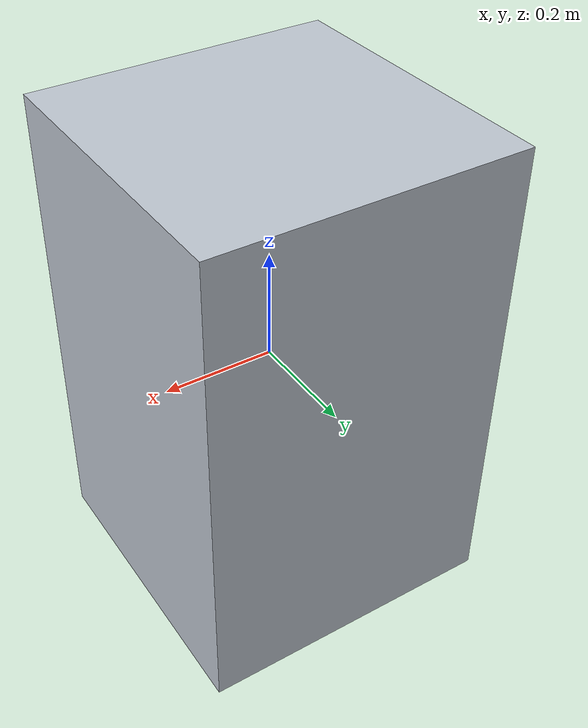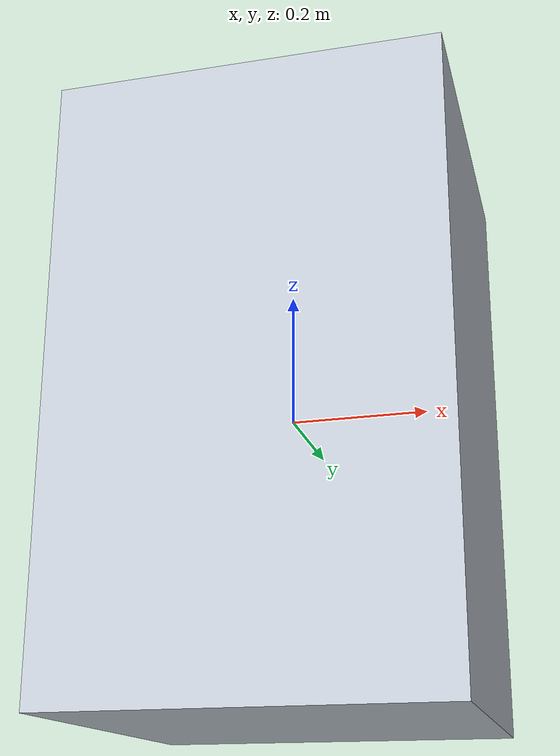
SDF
<?xml version="1.0"?>
<sdf version="1.6">
  <model name="mini_fridge">
    <static>true</static>
    <link name="link">
      <collision name="col">
        <geometry>
          <box>
            <size>0.55 0.55 0.88</size>
          </box>
        </geometry>
      </collision>
      <visual name="vis">
        <geometry>
          <box>
            <size>0.55 0.55 0.88</size>
          </box>
        </geometry>
        <material>
          <ambient>0.75 0.78 0.82 1</ambient>
          <diffuse>0.75 0.78 0.82 1</diffuse>
        </material>
      </visual>
    </link>
  </model>
</sdf>
